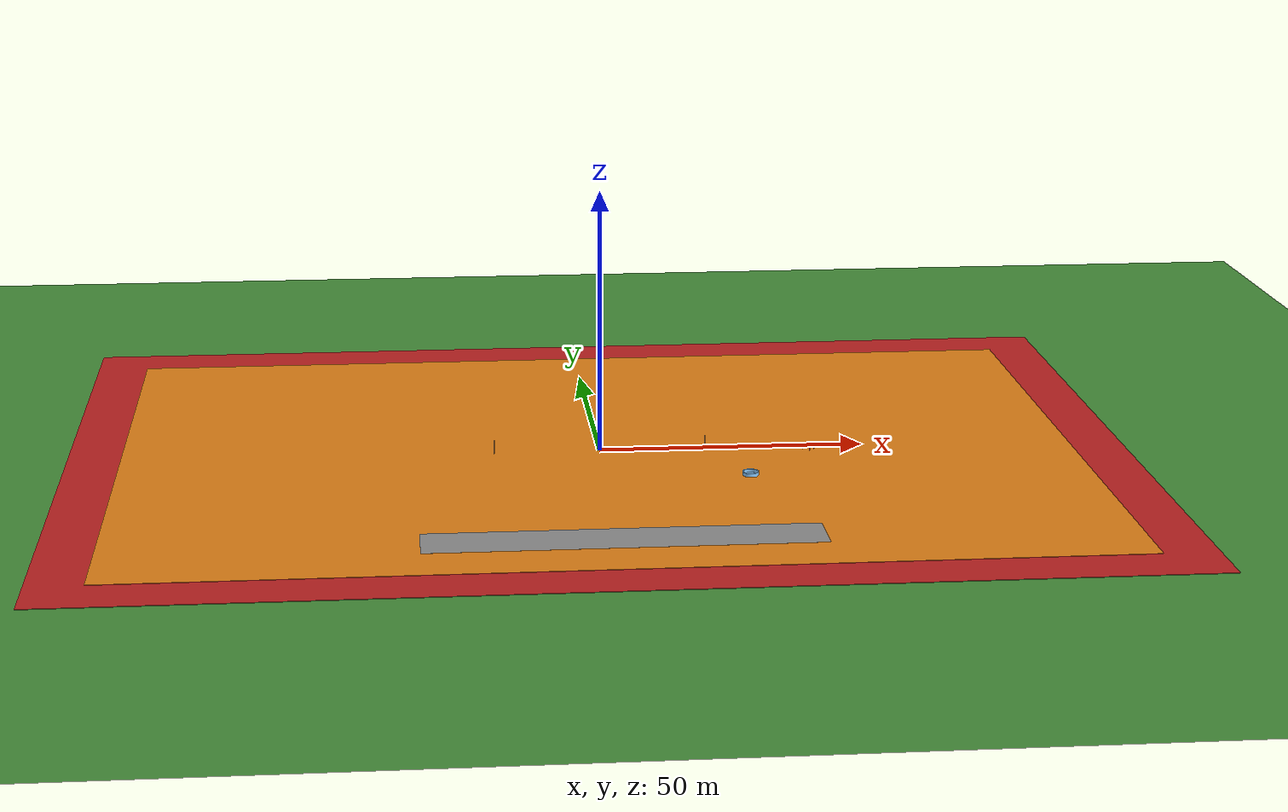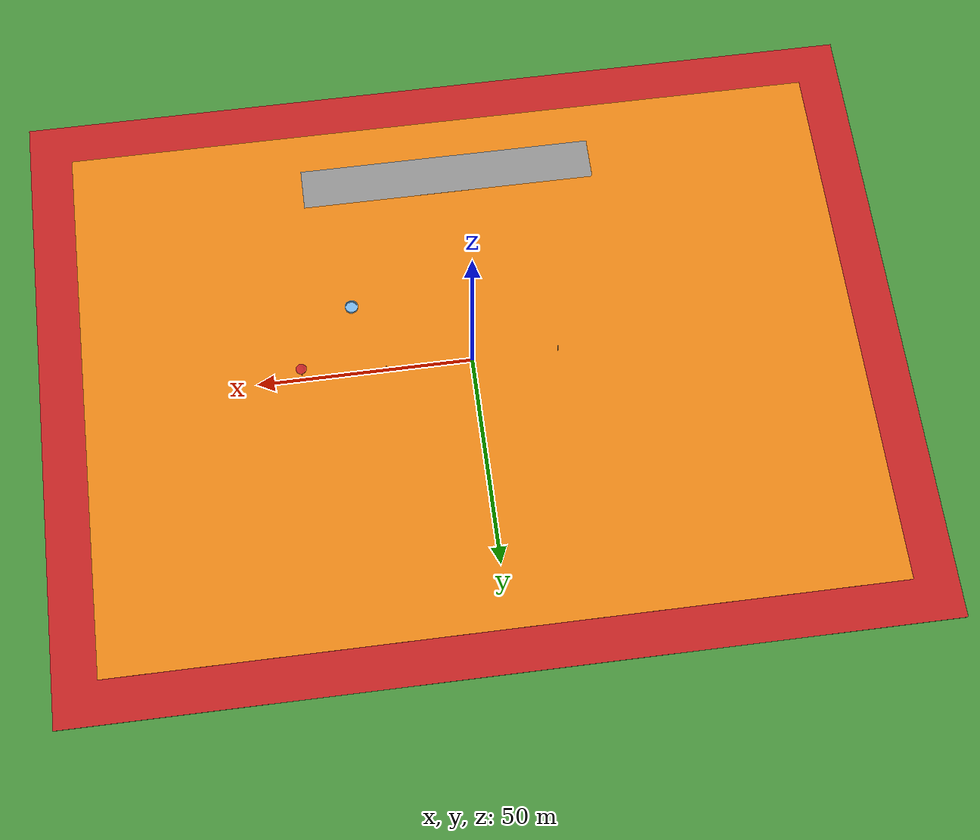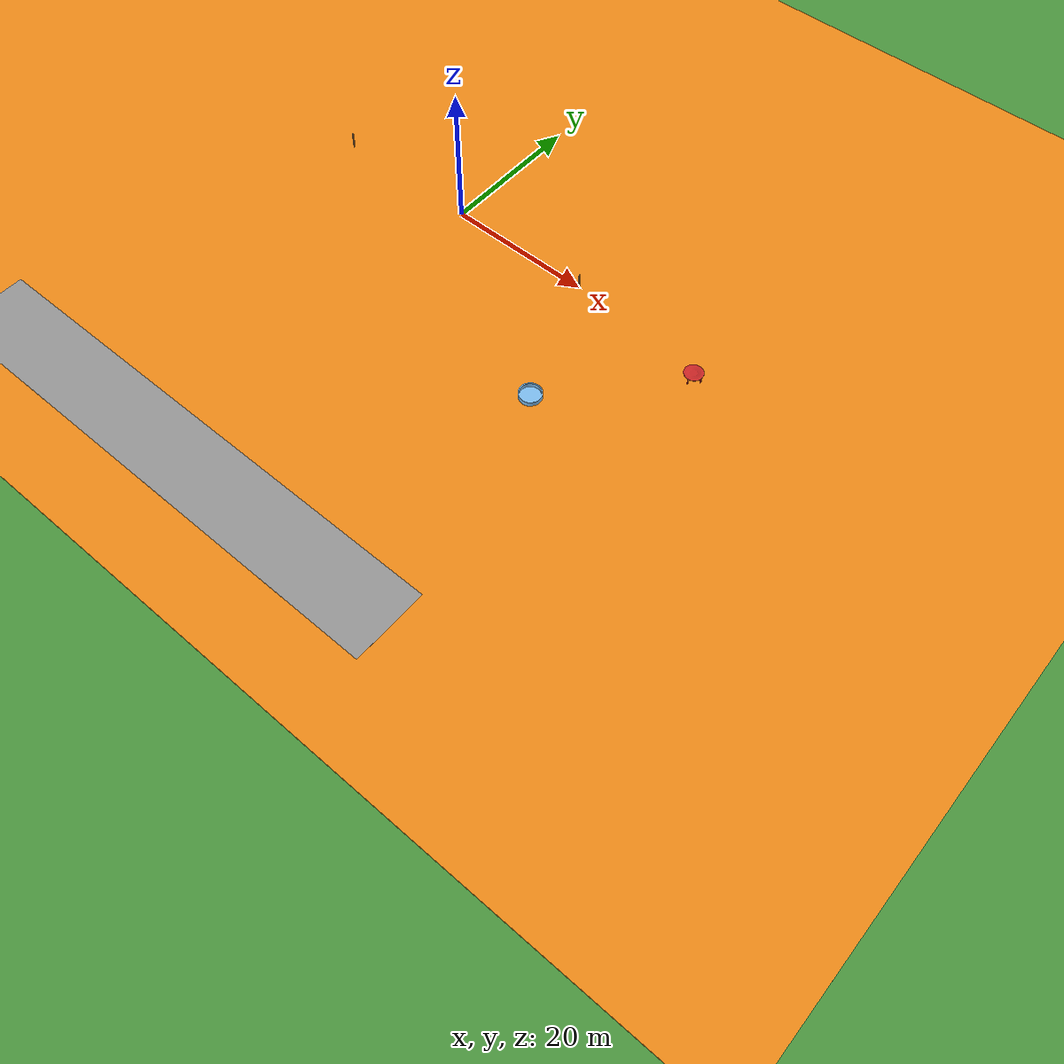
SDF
<sdf version="1.5">
 <world name="default">
  <physics type="ode">
   <ode>
    <solver><type>quick</type><iters>50</iters><sor>0.8</sor></solver>
    <constraints>
     <cfm>0.0</cfm>
     <erp>0.2</erp>
     <contact_max_correcting_vel>0.1</contact_max_correcting_vel>
     <contact_surface_layer>0.0</contact_surface_layer>
    </constraints>
   </ode>
   <real_time_update_rate>0</real_time_update_rate>
   <max_step_size>0.0010</max_step_size>
  </physics>
  <scene>
   <sky><clouds><speed>12</speed></clouds></sky>
   <ambient>0.4 0.4 0.4 1</ambient>
   <background>0.25 0.25 0.25 1</background>
  </scene>
  <include><uri>model://sun</uri></include>
  <include><uri>model://teknofest_ground</uri></include>
  <include><uri>model://water_intake_reservoir</uri><pose>24.934 -18.59 0 1.571 0 1.571</pose></include>
  <include><uri>model://water_release_target</uri><pose>38.328 -3.5768 0 1.571 0 1.571</pose></include>
  <include><uri>model://poles</uri><name>pole1</name><pose>-20 0 0 0 0 0</pose></include>
  <include><uri>model://poles</uri><name>pole2</name><pose>20 0 0 0 0 0</pose></include>
  <wind><linear_velocity>2.5 2.5 0</linear_velocity></wind>
  <plugin name="wind" filename="libWindPlugin.so">
   <force_approximation_scaling_factor>1</force_approximation_scaling_factor>
   <horizontal>
    <magnitude>
     <time_for_rise>10</time_for_rise>
     <sin><amplitude_percent>0.05</amplitude_percent><period>60</period></sin>
     <noise type="gaussian"><mean>0</mean><stddev>0.0002</stddev></noise>
    </magnitude>
    <direction>
     <time_for_rise>30</time_for_rise>
     <sin><amplitude>5</amplitude><period>20</period></sin>
     <noise type="gaussian"><mean>0</mean><stddev>0.03</stddev></noise>
    </direction>
   </horizontal>
   <vertical><noise type="gaussian"><mean>0</mean><stddev>0.03</stddev></noise></vertical>
  </plugin>
 </world>
</sdf>

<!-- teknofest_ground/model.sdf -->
<sdf version="1.5">

  <model name="teknofest_ground">

    <static>true</static>

    <link name="flyzone">
      <collision name="flyzone_collision">
        <geometry>
          <plane>
            <normal>0 0 1</normal>
            <size>170 120</size>
          </plane>
        </geometry>
        <surface>
          <friction>
            <ode>
              <mu>100</mu>
              <mu2>50</mu2>
            </ode>
          </friction>
        </surface>
      </collision>
      <visual name="flyzone_visual">
        <pose>0 0 0 0 0 0</pose>
        <geometry>
          <plane>
            <normal>0 0 1</normal>
            <size>170 120</size>
          </plane>
        </geometry>
        <material>
          <script>
            <uri>file://media/materials/scripts/gazebo.material</uri>
            <name>Gazebo/Grass</name>
          </script>
        </material>
      </visual>
    </link>

    <link name="bufferzone">
      <collision name="bufferzone_collision">
        <geometry>
          <plane>
            <normal>0 0 1</normal>
            <size>180 130</size>
          </plane>
        </geometry>
        <surface>
          <friction>
            <ode>
              <mu>100</mu>
              <mu2>50</mu2>
            </ode>
          </friction>
        </surface>
      </collision>
      <visual name="bufferzone_visual">
        <pose>0 0 -0.1 0 0 0</pose>
        <geometry>
          <plane>
            <normal>0 0 1</normal>
            <size>180 130</size>
          </plane>
        </geometry>
        <material>
          <script>
            <uri>file://media/materials/scripts/gazebo.material</uri>
            <name>Gazebo/Orange</name>
          </script>
        </material>
      </visual>
    </link>

    <link name="noflyzone">
      <collision name="noflyzone_collision">
        <geometry>
          <plane>
            <normal>0 0 1</normal>
            <size>200 150</size>
          </plane>
        </geometry>
        <surface>
          <friction>
            <ode>
              <mu>100</mu>
              <mu2>50</mu2>
            </ode>
          </friction>
        </surface>
      </collision>
      <visual name="noflyzone_visual">
        <pose>0 0 -0.2 0 0 0</pose>
        <geometry>
          <plane>
            <normal>0 0 1</normal>
            <size>200 150</size>
          </plane>
        </geometry>
        <material>
          <script>
            <uri>file://media/materials/scripts/gazebo.material</uri>
            <name>Gazebo/Red</name>
          </script>
        </material>
      </visual>
    </link>

   <link name="takeoffzone">
      <collision name="takeoffzone_collision">
        <geometry>
          <plane>
            <normal>0 0 1</normal>
            <size>70 10</size>
          </plane>
        </geometry>
        <surface>
          <friction>
            <ode>
              <mu>100</mu>
              <mu2>50</mu2>
            </ode>
          </friction>
        </surface>
      </collision>
      <visual name="takeoffzone_visual">
        <pose>0 -50 0.1 0 0 0</pose>
        <geometry>
          <plane>
            <normal>0 0 1</normal>
            <size>70 10</size>
          </plane>
        </geometry>
        <material>
          <script>
            <uri>file://media/materials/scripts/gazebo.material</uri>
            <name>Gazebo/Grey</name>
          </script>
        </material>
      </visual>
    </link>

  </model>
</sdf>

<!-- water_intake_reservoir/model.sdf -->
<sdf version="1.5">
  <model name="water_intake_reservoir">
    <static>true</static>
    <link name="link">
      <collision name="collision">
        <geometry>
          <mesh>
            <uri>model://water_intake_reservoir/meshes/water_intake_reservoir.dae</uri>
            <scale>0.002 0.002 0.002</scale>
          </mesh>
        </geometry>
        <surface>
          <friction>
            <ode>
              <mu>100</mu>
              <mu2>50</mu2>
            </ode>
          </friction>
        </surface>
      </collision>
      <visual name="visual">
        <geometry>
          <mesh>
            <uri>model://water_intake_reservoir/meshes/water_intake_reservoir.dae</uri>
            <scale>0.001 0.001 0.001</scale>
          </mesh>
        </geometry>
        <material>
          <script>
            <uri>file://media/materials/scripts/gazebo.material</uri>
            <name>Gazebo/SkyBlue</name>
          </script>
        </material>
      </visual>
    </link>
  </model>
</sdf>

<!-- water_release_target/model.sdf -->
<sdf version="1.5">
  <model name="water_release_target">
    <static>true</static>
    <link name="link">
      <collision name="collision">
        <geometry>
          <mesh>
            <uri>model://water_release_target/meshes/water_release_target.dae</uri>
            <scale>0.002 0.002 0.002</scale>
          </mesh>
        </geometry>
        <surface>
          <friction>
            <ode>
              <mu>100</mu>
              <mu2>50</mu2>
            </ode>
          </friction>
        </surface>
      </collision>
      <visual name="visual">
        <geometry>
          <mesh>
            <uri>model://water_release_target/meshes/water_release_target.dae</uri>
            <scale>0.001 0.001 0.001</scale>
          </mesh>
        </geometry>
        <material>
          <script>
            <uri>file://media/materials/scripts/gazebo.material</uri>
            <name>Gazebo/Red</name>
          </script>
        </material>
      </visual>
    </link>
  </model>
</sdf>

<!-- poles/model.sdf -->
<sdf version="1.5">
  <model name="poles">
    <static>true</static>
    <link name="pole">
      <collision name="pole_collision">
        <geometry>
          <cylinder>
            <radius>0.1</radius>
            <length>5</length>
          </cylinder>
        </geometry>
      </collision>
      <visual name="pole_visual">
        <geometry>
          <cylinder>
            <radius>0.1</radius>
            <length>5</length>
          </cylinder>
        </geometry>
        <material>
          <script>
            <uri>file://media/materials/scripts/gazebo.material</uri>
            <name>Gazebo/WoodFloor</name>
          </script>
        </material>
      </visual>
    </link>
  </model>
</sdf>
